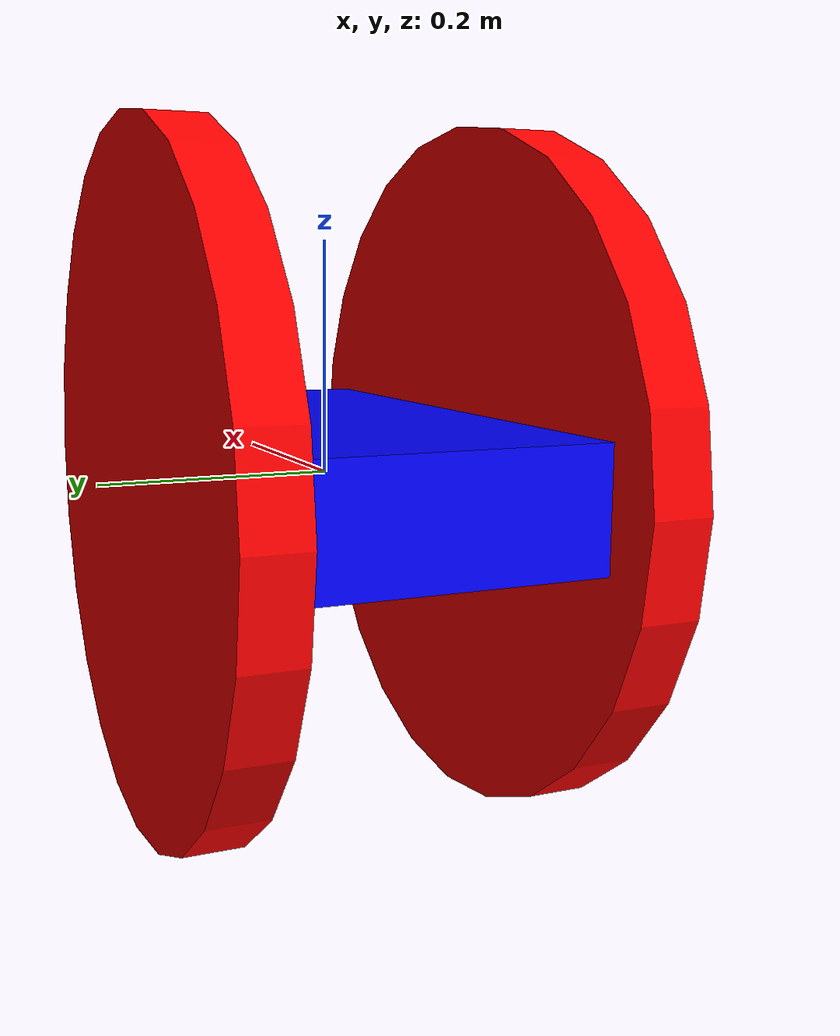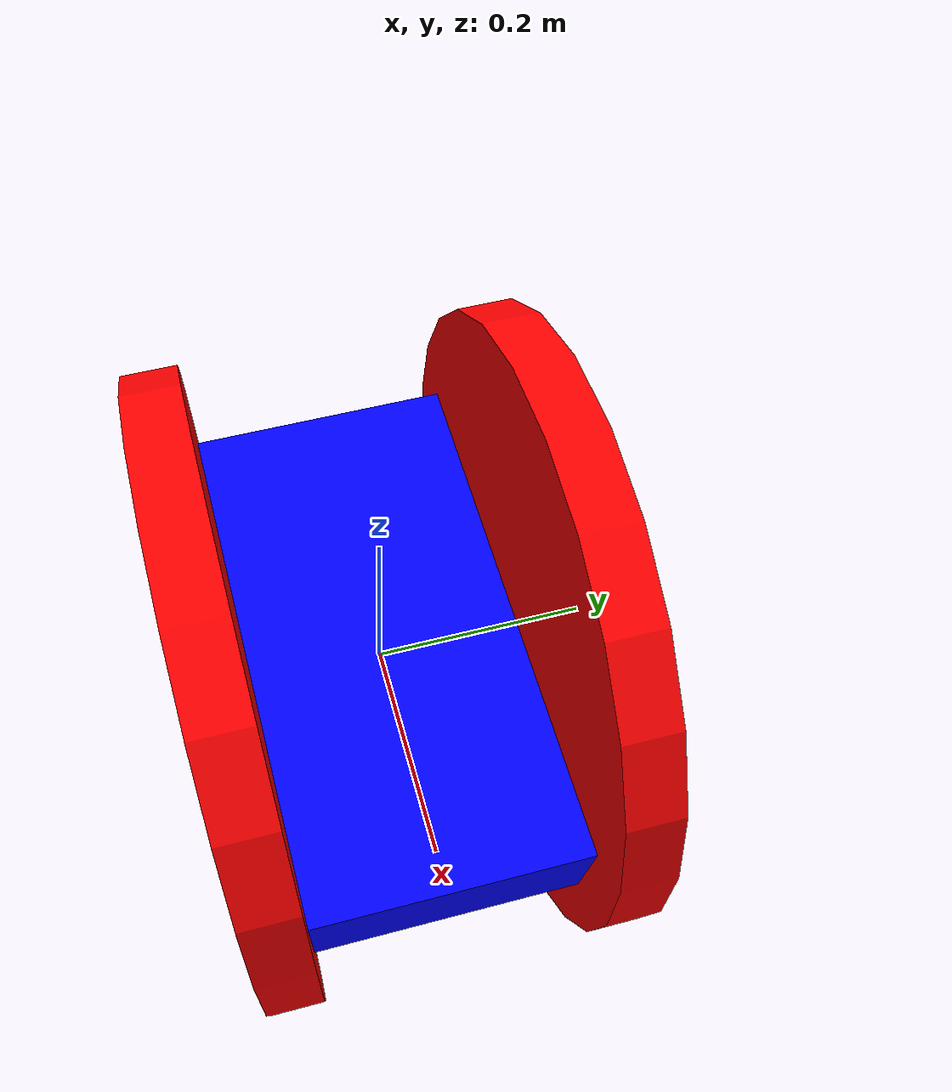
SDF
<sdf version='1.11'>
  <model name='diff'>
    <link name='base_link'>
      <inertial>
        <pose>0 0 0 0 0 0</pose>
        <mass>1</mass>
        <inertia>
          <ixx>0.01</ixx>
          <ixy>0</ixy>
          <ixz>0</ixz>
          <iyy>0.01</iyy>
          <iyz>0</iyz>
          <izz>0.01</izz>
        </inertia>
      </inertial>
      <collision name='base_link_collision'>
        <pose>0 0 0 0 0 0</pose>
        <geometry>
          <box>
            <size>0.5 0.29999999999999999 0.10000000000000001</size>
          </box>
        </geometry>
      </collision>
      <visual name='base_link_visual'>
        <pose>0 0 0 0 0 0</pose>
        <geometry>
          <box>
            <size>0.5 0.29999999999999999 0.10000000000000001</size>
          </box>
        </geometry>
        <material>
          <diffuse>0 0 1 1</diffuse>
          <ambient>0 0 1 1</ambient>
        </material>
      </visual>
    </link>
    <joint name='left_wheel_link_joint' type='revolute'>
      <pose relative_to='base_link'>0 0.14999999999999999 0 1.5708 0 0</pose>
      <parent>base_link</parent>
      <child>left_wheel_link</child>
      <axis>
        <xyz>0 0 1</xyz>
        <limit>
          <lower>-inf</lower>
          <upper>inf</upper>
        </limit>
        <dynamics>
          <spring_reference>0</spring_reference>
          <spring_stiffness>0</spring_stiffness>
        </dynamics>
      </axis>
    </joint>
    <link name='left_wheel_link'>
      <pose relative_to='left_wheel_link_joint'>0 0 0 0 0 0</pose>
      <inertial>
        <pose>0 0 0 0 0 0</pose>
        <mass>0.10000000000000001</mass>
        <inertia>
          <ixx>0.001</ixx>
          <ixy>0</ixy>
          <ixz>0</ixz>
          <iyy>0.001</iyy>
          <iyz>0</iyz>
          <izz>0.001</izz>
        </inertia>
      </inertial>
      <collision name='left_wheel_link_collision'>
        <pose>0 0 0 0 0 0</pose>
        <geometry>
          <cylinder>
            <length>0.050000000000000003</length>
            <radius>0.29999999999999999</radius>
          </cylinder>
        </geometry>
      </collision>
      <visual name='left_wheel_link_visual'>
        <pose>0 0 0 0 0 0</pose>
        <geometry>
          <cylinder>
            <length>0.050000000000000003</length>
            <radius>0.29999999999999999</radius>
          </cylinder>
        </geometry>
        <material>
          <diffuse>1 0 0 1</diffuse>
          <ambient>1 0 0 1</ambient>
        </material>
      </visual>
    </link>
    <joint name='right_wheel_link_joint' type='revolute'>
      <pose relative_to='base_link'>0 -0.14999999999999999 0 1.5708 0 0</pose>
      <parent>base_link</parent>
      <child>right_wheel_link</child>
      <axis>
        <xyz>0 0 1</xyz>
        <limit>
          <lower>-inf</lower>
          <upper>inf</upper>
        </limit>
        <dynamics>
          <spring_reference>0</spring_reference>
          <spring_stiffness>0</spring_stiffness>
        </dynamics>
      </axis>
    </joint>
    <link name='right_wheel_link'>
      <pose relative_to='right_wheel_link_joint'>0 0 0 0 0 0</pose>
      <inertial>
        <pose>0 0 0 0 0 0</pose>
        <mass>0.10000000000000001</mass>
        <inertia>
          <ixx>0.001</ixx>
          <ixy>0</ixy>
          <ixz>0</ixz>
          <iyy>0.001</iyy>
          <iyz>0</iyz>
          <izz>0.001</izz>
        </inertia>
      </inertial>
      <collision name='right_wheel_link_collision'>
        <pose>0 0 0 0 0 0</pose>
        <geometry>
          <cylinder>
            <length>0.050000000000000003</length>
            <radius>0.29999999999999999</radius>
          </cylinder>
        </geometry>
      </collision>
      <visual name='right_wheel_link_visual'>
        <pose>0 0 0 0 0 0</pose>
        <geometry>
          <cylinder>
            <length>0.050000000000000003</length>
            <radius>0.29999999999999999</radius>
          </cylinder>
        </geometry>
        <material>
          <diffuse>1 0 0 1</diffuse>
          <ambient>1 0 0 1</ambient>
        </material>
      </visual>
    </link>
  </model>
</sdf>
